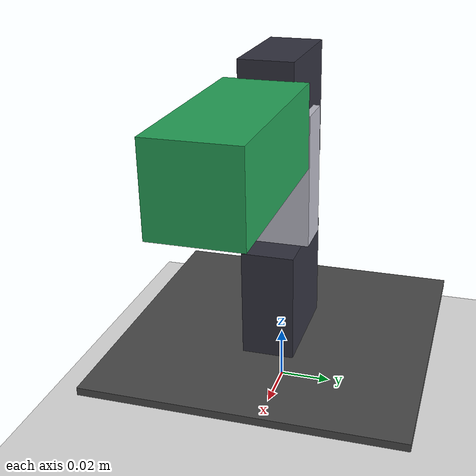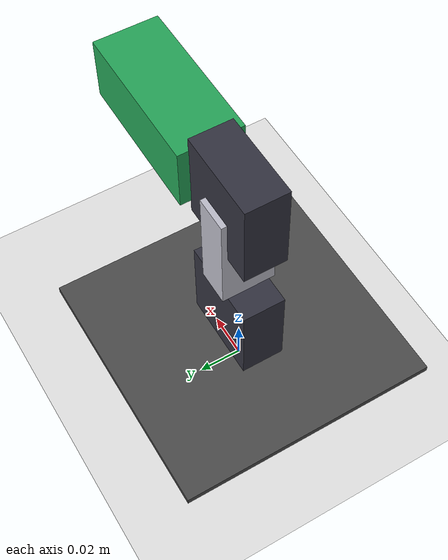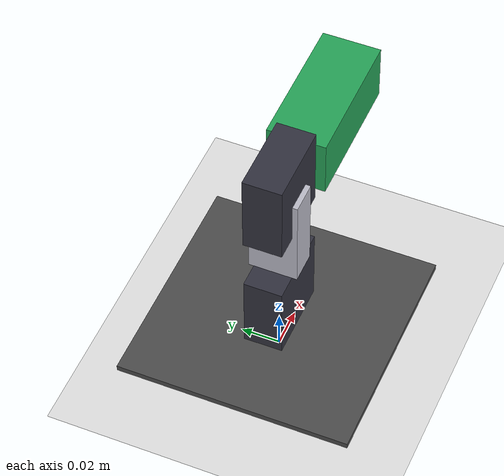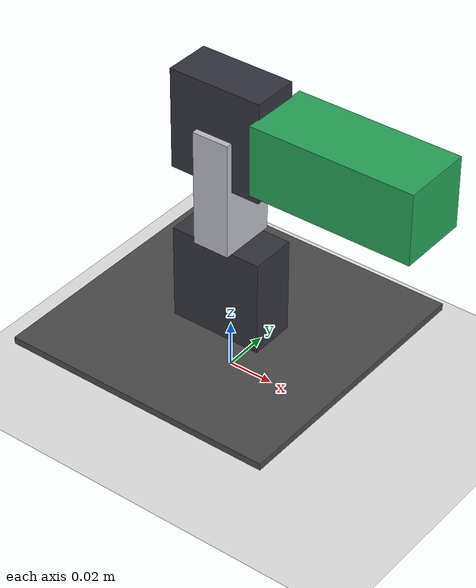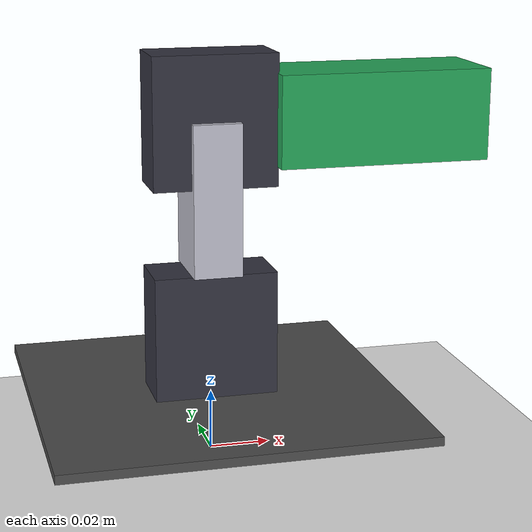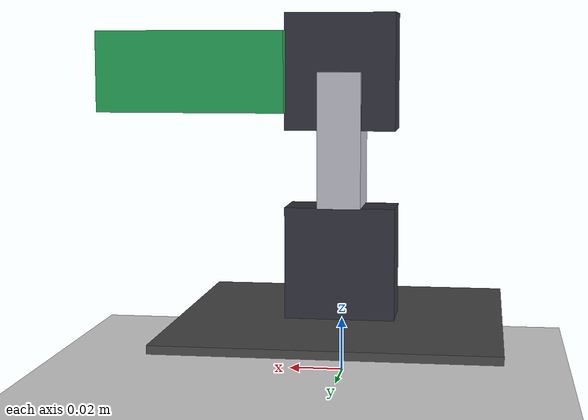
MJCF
<mujoco model="pattern_b_integrated">
  <option timestep="0.002" gravity="0 0 -9.81"/>
  <compiler angle="radian" autolimits="true"/>

  <visual>
    <global offwidth="1280" offheight="960"/>
  </visual>

  <default>
    <joint damping="0.2" armature="0.02"/>
    <geom rgba="0.55 0.57 0.6 1"/>
  </default>

  <worldbody>
    <light pos="0 0 1" dir="0 0 -1"/>
    <geom name="floor" type="plane" size="1 1 0.1" rgba="0.9 0.9 0.9 1"/>

    <!-- 固定ベース板 (土台。PANサーボは接着固定=world直結の固定物) -->
    <body name="base" pos="0 0 0.02">
      <geom name="base_geom" type="box" size="0.06 0.06 0.0015" rgba="0.3 0.3 0.3 1"/>

      <!-- ===== PANサーボ本体を include (固定側, jointなし) ===== -->
      <include file="parts/servo_x.xml"/>

      <!-- yaw(PAN)関節: run.sh準拠 center=90deg, min=30deg, max=150deg
           (radian: center=1.570796, min=0.523599, max=2.617994) -->
      <body name="pan_link" pos="0 0 0.043">
        <joint name="yaw" type="hinge" axis="0 0 1"
               range="0.523599 2.617994" ref="1.570796"/>

        <!-- ===== ブラケットを include ===== -->
        <include file="parts/bracket.xml"/>

        <!-- pitch(TILT)関節: run.sh準拠 center=90deg, min=50deg, max=130deg
             (radian: center=1.570796, min=0.872665, max=2.268928) -->
        <body name="tilt_link" pos="0 0 0.05">
          <joint name="pitch" type="hinge" axis="0 1 0"
                 range="0.872665 2.268928" ref="1.570796"/>

          <!-- ===== TILTサーボ本体を include (jointなし) ===== -->
          <include file="parts/servo_y.xml"/>

          <!-- ===== カメラを include ===== -->
          <include file="parts/camera.xml"/>
        </body>
      </body>
    </body>
  </worldbody>

  <actuator>
    <!-- position actuator: ctrlrangeはradian (run.sh値の変換: 30-150deg, 50-130deg) -->
    <position name="servo_x" joint="yaw"   kp="12" ctrlrange="0.523599 2.617994"/>
    <position name="servo_y" joint="pitch" kp="10" ctrlrange="0.872665 2.268928"/>
  </actuator>

  <sensor>
    <jointpos name="yaw_pos"   joint="yaw"/>
    <jointpos name="pitch_pos" joint="pitch"/>
  </sensor>
</mujoco>

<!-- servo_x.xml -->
<mujocoinclude>
  <body name="servo_x_body" pos="0 0 0.0215">
    <geom name="servo_x_geom" type="box"
          size="0.0204 0.0099 0.0215"
          mass="0.055" rgba="0.2 0.2 0.25 1"/>
  </body>
</mujocoinclude>

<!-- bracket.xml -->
<mujocoinclude>
  <body name="bracket_body" pos="0 0 0.025">
    <geom name="bracket_geom" type="box"
          size="0.008 0.0125 0.025"
          mass="0.018" rgba="0.75 0.75 0.8 1"/>
  </body>
</mujocoinclude>

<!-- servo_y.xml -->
<mujocoinclude>
  <body name="servo_y_body" pos="0 0 0">
    <geom name="servo_y_geom" type="box"
          size="0.0204 0.0099 0.0215"
          mass="0.055" rgba="0.2 0.2 0.25 1"/>
  </body>
</mujocoinclude>

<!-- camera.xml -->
<mujocoinclude>
  <body name="camera_body" pos="0.055 0 0">
    <geom name="camera_geom" type="box"
          size="0.035 0.015 0.015"
          mass="0.050" rgba="0.15 0.65 0.35 1"/>
  </body>
</mujocoinclude>
